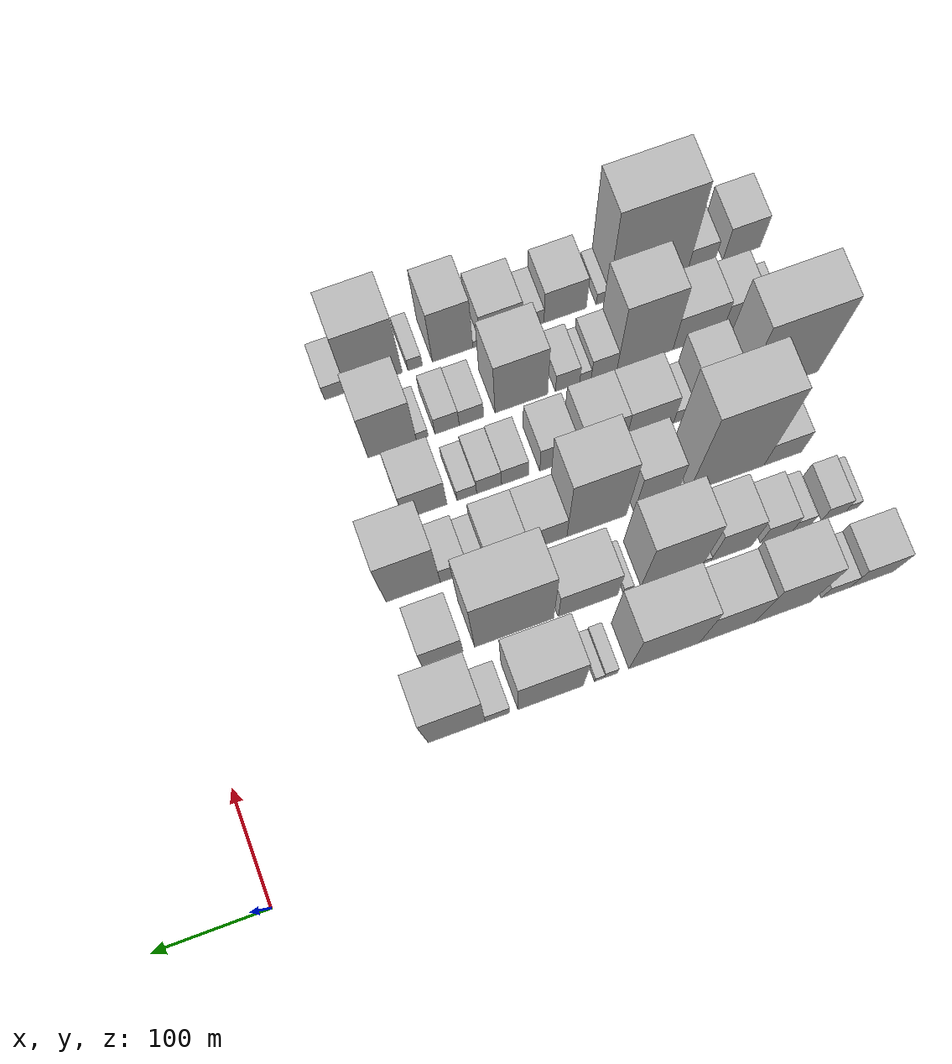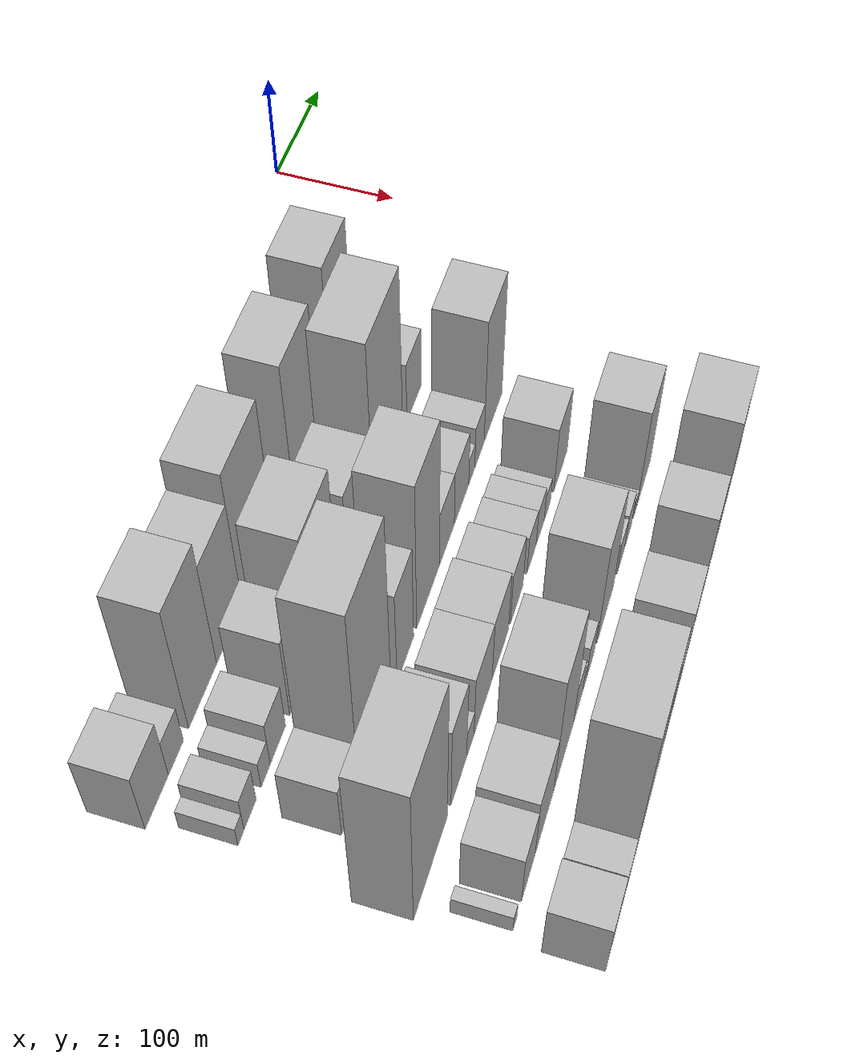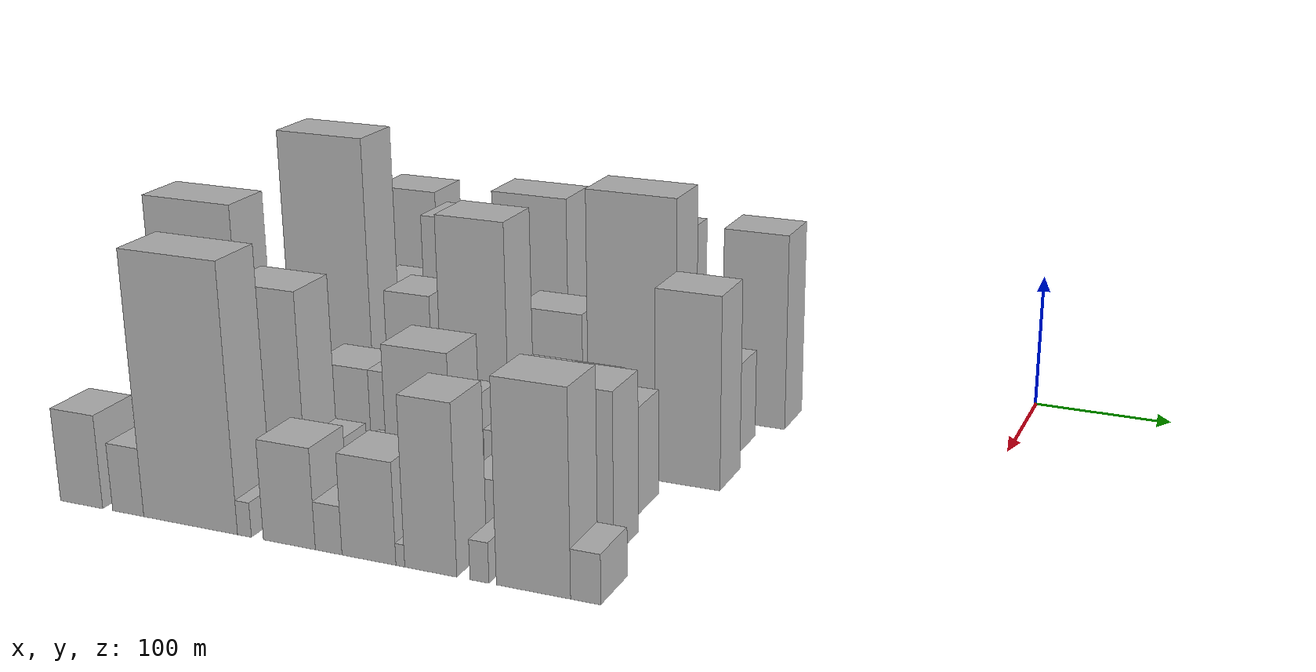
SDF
<sdf version="1.6">
 <world name="default">
  <model name="building_14">
   <static>1</static>
   <pose>100.0000 -546.5799 0 0.000000 0.000000 0.000000</pose>
   <link name="link">
    <pose>0 0 36.00 0 0 0</pose>
    <collision name="collision"><geometry><box><size>40.0000 38.7281 72.0000</size></box></geometry></collision>
    <visual name="visual">
     <cast_shadows>0</cast_shadows>
     <geometry><box><size>40.0000 38.7281 72.0000</size></box></geometry>
     <material>
      <script>
       <uri>model://HANNAS_wall/materials/scripts</uri>
       <uri>model://HANNAS_wall/materials/textures</uri>
       <name>vrc/HANNAS_wall</name>
      </script>
     </material>
    </visual>
   </link>
  </model>
  <model name="building_15">
   <static>1</static>
   <pose>100.0000 -514.3881 0 0.000000 0.000000 0.000000</pose>
   <link name="link">
    <pose>0 0 22.50 0 0 0</pose>
    <collision name="collision"><geometry><box><size>40.0000 25.6554 45.0000</size></box></geometry></collision>
    <visual name="visual">
     <cast_shadows>0</cast_shadows>
     <geometry><box><size>40.0000 25.6554 45.0000</size></box></geometry>
     <material>
      <script>
       <uri>model://HANNAS_wall/materials/scripts</uri>
       <uri>model://HANNAS_wall/materials/textures</uri>
       <name>vrc/HANNAS_wall</name>
      </script>
     </material>
    </visual>
   </link>
  </model>
  <model name="building_16">
   <static>1</static>
   <pose>100.0000 -467.4501 0 0.000000 0.000000 0.000000</pose>
   <link name="link">
    <pose>0 0 75.00 0 0 0</pose>
    <collision name="collision"><geometry><box><size>40.0000 50.2205 150.0000</size></box></geometry></collision>
    <visual name="visual">
     <cast_shadows>0</cast_shadows>
     <geometry><box><size>40.0000 50.2205 150.0000</size></box></geometry>
     <material>
      <script>
       <uri>model://HANNAS_wall/materials/scripts</uri>
       <uri>model://HANNAS_wall/materials/textures</uri>
       <name>vrc/HANNAS_wall</name>
      </script>
     </material>
    </visual>
   </link>
  </model>
  <model name="building_17">
   <static>1</static>
   <pose>100.0000 -418.1977 0 0.000000 0.000000 0.000000</pose>
   <link name="link">
    <pose>0 0 61.50 0 0 0</pose>
    <collision name="collision"><geometry><box><size>40.0000 48.2844 123.0000</size></box></geometry></collision>
    <visual name="visual">
     <cast_shadows>0</cast_shadows>
     <geometry><box><size>40.0000 48.2844 123.0000</size></box></geometry>
     <material>
      <script>
       <uri>model://HANNAS_wall/materials/scripts</uri>
       <uri>model://HANNAS_wall/materials/textures</uri>
       <name>vrc/HANNAS_wall</name>
      </script>
     </material>
    </visual>
   </link>
  </model>
  <model name="building_18">
   <static>1</static>
   <pose>100.0000 -363.4000 0 0.000000 0.000000 0.000000</pose>
   <link name="link">
    <pose>0 0 78.00 0 0 0</pose>
    <collision name="collision"><geometry><box><size>40.0000 61.3111 156.0000</size></box></geometry></collision>
    <visual name="visual">
     <cast_shadows>0</cast_shadows>
     <geometry><box><size>40.0000 61.3111 156.0000</size></box></geometry>
     <material>
      <script>
       <uri>model://HANNAS_wall/materials/scripts</uri>
       <uri>model://HANNAS_wall/materials/textures</uri>
       <name>vrc/HANNAS_wall</name>
      </script>
     </material>
    </visual>
   </link>
  </model>
  <model name="building_19">
   <static>1</static>
   <pose>100.0000 -317.0317 0 0.000000 0.000000 0.000000</pose>
   <link name="link">
    <pose>0 0 13.50 0 0 0</pose>
    <collision name="collision"><geometry><box><size>40.0000 11.4255 27.0000</size></box></geometry></collision>
    <visual name="visual">
     <cast_shadows>0</cast_shadows>
     <geometry><box><size>40.0000 11.4255 27.0000</size></box></geometry>
     <material>
      <script>
       <uri>model://HANNAS_wall/materials/scripts</uri>
       <uri>model://HANNAS_wall/materials/textures</uri>
       <name>vrc/HANNAS_wall</name>
      </script>
     </material>
    </visual>
   </link>
  </model>
  <model name="building_20">
   <static>1</static>
   <pose>100.0000 -307.1301 0 0.000000 0.000000 0.000000</pose>
   <link name="link">
    <pose>0 0 9.00 0 0 0</pose>
    <collision name="collision"><geometry><box><size>40.0000 8.3779 18.0000</size></box></geometry></collision>
    <visual name="visual">
     <cast_shadows>0</cast_shadows>
     <geometry><box><size>40.0000 8.3779 18.0000</size></box></geometry>
     <material>
      <script>
       <uri>model://HANNAS_wall/materials/scripts</uri>
       <uri>model://HANNAS_wall/materials/textures</uri>
       <name>vrc/HANNAS_wall</name>
      </script>
     </material>
    </visual>
   </link>
  </model>
  <model name="building_21">
   <static>1</static>
   <pose>100.0000 -264.8392 0 0.000000 0.000000 0.000000</pose>
   <link name="link">
    <pose>0 0 70.50 0 0 0</pose>
    <collision name="collision"><geometry><box><size>40.0000 56.2038 141.0000</size></box></geometry></collision>
    <visual name="visual">
     <cast_shadows>0</cast_shadows>
     <geometry><box><size>40.0000 56.2038 141.0000</size></box></geometry>
     <material>
      <script>
       <uri>model://HANNAS_wall/materials/scripts</uri>
       <uri>model://HANNAS_wall/materials/textures</uri>
       <name>vrc/HANNAS_wall</name>
      </script>
     </material>
    </visual>
   </link>
  </model>
  <model name="building_22">
   <static>1</static>
   <pose>100.0000 -219.1649 0 0.000000 0.000000 0.000000</pose>
   <link name="link">
    <pose>0 0 19.50 0 0 0</pose>
    <collision name="collision"><geometry><box><size>40.0000 21.1448 39.0000</size></box></geometry></collision>
    <visual name="visual">
     <cast_shadows>0</cast_shadows>
     <geometry><box><size>40.0000 21.1448 39.0000</size></box></geometry>
     <material>
      <script>
       <uri>model://HANNAS_wall/materials/scripts</uri>
       <uri>model://HANNAS_wall/materials/textures</uri>
       <name>vrc/HANNAS_wall</name>
      </script>
     </material>
    </visual>
   </link>
  </model>
  <model name="building_23">
   <static>1</static>
   <pose>100.0000 -184.2398 0 0.000000 0.000000 0.000000</pose>
   <link name="link">
    <pose>0 0 73.50 0 0 0</pose>
    <collision name="collision"><geometry><box><size>40.0000 48.7054 147.0000</size></box></geometry></collision>
    <visual name="visual">
     <cast_shadows>0</cast_shadows>
     <geometry><box><size>40.0000 48.7054 147.0000</size></box></geometry>
     <material>
      <script>
       <uri>model://HANNAS_wall/materials/scripts</uri>
       <uri>model://HANNAS_wall/materials/textures</uri>
       <name>vrc/HANNAS_wall</name>
      </script>
     </material>
    </visual>
   </link>
  </model>
  <model name="building_67">
   <static>1</static>
   <pose>160.0000 -553.2306 0 0.000000 0.000000 0.000000</pose>
   <link name="link">
    <pose>0 0 12.00 0 0 0</pose>
    <collision name="collision"><geometry><box><size>40.0000 10.8909 24.0000</size></box></geometry></collision>
    <visual name="visual">
     <cast_shadows>0</cast_shadows>
     <geometry><box><size>40.0000 10.8909 24.0000</size></box></geometry>
     <material>
      <script>
       <uri>model://HANNAS_wall/materials/scripts</uri>
       <uri>model://HANNAS_wall/materials/textures</uri>
       <name>vrc/HANNAS_wall</name>
      </script>
     </material>
    </visual>
   </link>
  </model>
  <model name="building_68">
   <static>1</static>
   <pose>160.0000 -537.0255 0 0.000000 0.000000 0.000000</pose>
   <link name="link">
    <pose>0 0 21.00 0 0 0</pose>
    <collision name="collision"><geometry><box><size>40.0000 21.5193 42.0000</size></box></geometry></collision>
    <visual name="visual">
     <cast_shadows>0</cast_shadows>
     <geometry><box><size>40.0000 21.5193 42.0000</size></box></geometry>
     <material>
      <script>
       <uri>model://HANNAS_wall/materials/scripts</uri>
       <uri>model://HANNAS_wall/materials/textures</uri>
       <name>vrc/HANNAS_wall</name>
      </script>
     </material>
    </visual>
   </link>
  </model>
  <model name="building_69">
   <static>1</static>
   <pose>160.0000 -508.9001 0 0.000000 0.000000 0.000000</pose>
   <link name="link">
    <pose>0 0 16.50 0 0 0</pose>
    <collision name="collision"><geometry><box><size>40.0000 16.7316 33.0000</size></box></geometry></collision>
    <visual name="visual">
     <cast_shadows>0</cast_shadows>
     <geometry><box><size>40.0000 16.7316 33.0000</size></box></geometry>
     <material>
      <script>
       <uri>model://HANNAS_wall/materials/scripts</uri>
       <uri>model://HANNAS_wall/materials/textures</uri>
       <name>vrc/HANNAS_wall</name>
      </script>
     </material>
    </visual>
   </link>
  </model>
  <model name="building_70">
   <static>1</static>
   <pose>160.0000 -486.1937 0 0.000000 0.000000 0.000000</pose>
   <link name="link">
    <pose>0 0 27.00 0 0 0</pose>
    <collision name="collision"><geometry><box><size>40.0000 28.6812 54.0000</size></box></geometry></collision>
    <visual name="visual">
     <cast_shadows>0</cast_shadows>
     <geometry><box><size>40.0000 28.6812 54.0000</size></box></geometry>
     <material>
      <script>
       <uri>model://HANNAS_wall/materials/scripts</uri>
       <uri>model://HANNAS_wall/materials/textures</uri>
       <name>vrc/HANNAS_wall</name>
      </script>
     </material>
    </visual>
   </link>
  </model>
  <model name="building_71">
   <static>1</static>
   <pose>160.0000 -445.7979 0 0.000000 0.000000 0.000000</pose>
   <link name="link">
    <pose>0 0 48.00 0 0 0</pose>
    <collision name="collision"><geometry><box><size>40.0000 36.1104 96.0000</size></box></geometry></collision>
    <visual name="visual">
     <cast_shadows>0</cast_shadows>
     <geometry><box><size>40.0000 36.1104 96.0000</size></box></geometry>
     <material>
      <script>
       <uri>model://HANNAS_wall/materials/scripts</uri>
       <uri>model://HANNAS_wall/materials/textures</uri>
       <name>vrc/HANNAS_wall</name>
      </script>
     </material>
    </visual>
   </link>
  </model>
  <model name="building_72">
   <static>1</static>
   <pose>160.0000 -424.4760 0 0.000000 0.000000 0.000000</pose>
   <link name="link">
    <pose>0 0 7.50 0 0 0</pose>
    <collision name="collision"><geometry><box><size>40.0000 6.5333 15.0000</size></box></geometry></collision>
    <visual name="visual">
     <cast_shadows>0</cast_shadows>
     <geometry><box><size>40.0000 6.5333 15.0000</size></box></geometry>
     <material>
      <script>
       <uri>model://HANNAS_wall/materials/scripts</uri>
       <uri>model://HANNAS_wall/materials/textures</uri>
       <name>vrc/HANNAS_wall</name>
      </script>
     </material>
    </visual>
   </link>
  </model>
  <model name="building_73">
   <static>1</static>
   <pose>160.0000 -393.7702 0 0.000000 0.000000 0.000000</pose>
   <link name="link">
    <pose>0 0 75.00 0 0 0</pose>
    <collision name="collision"><geometry><box><size>40.0000 54.8784 150.0000</size></box></geometry></collision>
    <visual name="visual">
     <cast_shadows>0</cast_shadows>
     <geometry><box><size>40.0000 54.8784 150.0000</size></box></geometry>
     <material>
      <script>
       <uri>model://HANNAS_wall/materials/scripts</uri>
       <uri>model://HANNAS_wall/materials/textures</uri>
       <name>vrc/HANNAS_wall</name>
      </script>
     </material>
    </visual>
   </link>
  </model>
  <model name="building_74">
   <static>1</static>
   <pose>160.0000 -355.0325 0 0.000000 0.000000 0.000000</pose>
   <link name="link">
    <pose>0 0 9.00 0 0 0</pose>
    <collision name="collision"><geometry><box><size>40.0000 8.5969 18.0000</size></box></geometry></collision>
    <visual name="visual">
     <cast_shadows>0</cast_shadows>
     <geometry><box><size>40.0000 8.5969 18.0000</size></box></geometry>
     <material>
      <script>
       <uri>model://HANNAS_wall/materials/scripts</uri>
       <uri>model://HANNAS_wall/materials/textures</uri>
       <name>vrc/HANNAS_wall</name>
      </script>
     </material>
    </visual>
   </link>
  </model>
  <model name="building_75">
   <static>1</static>
   <pose>160.0000 -319.7827 0 0.000000 0.000000 0.000000</pose>
   <link name="link">
    <pose>0 0 45.00 0 0 0</pose>
    <collision name="collision"><geometry><box><size>40.0000 51.9028 90.0000</size></box></geometry></collision>
    <visual name="visual">
     <cast_shadows>0</cast_shadows>
     <geometry><box><size>40.0000 51.9028 90.0000</size></box></geometry>
     <material>
      <script>
       <uri>model://HANNAS_wall/materials/scripts</uri>
       <uri>model://HANNAS_wall/materials/textures</uri>
       <name>vrc/HANNAS_wall</name>
      </script>
     </material>
    </visual>
   </link>
  </model>
  <model name="building_76">
   <static>1</static>
   <pose>160.0000 -255.5633 0 0.000000 0.000000 0.000000</pose>
   <link name="link">
    <pose>0 0 91.50 0 0 0</pose>
    <collision name="collision"><geometry><box><size>40.0000 68.5361 183.0000</size></box></geometry></collision>
    <visual name="visual">
     <cast_shadows>0</cast_shadows>
     <geometry><box><size>40.0000 68.5361 183.0000</size></box></geometry>
     <material>
      <script>
       <uri>model://HANNAS_wall/materials/scripts</uri>
       <uri>model://HANNAS_wall/materials/textures</uri>
       <name>vrc/HANNAS_wall</name>
      </script>
     </material>
    </visual>
   </link>
  </model>
  <model name="building_77">
   <static>1</static>
   <pose>160.0000 -193.5473 0 0.000000 0.000000 0.000000</pose>
   <link name="link">
    <pose>0 0 33.00 0 0 0</pose>
    <collision name="collision"><geometry><box><size>40.0000 35.4958 66.0000</size></box></geometry></collision>
    <visual name="visual">
     <cast_shadows>0</cast_shadows>
     <geometry><box><size>40.0000 35.4958 66.0000</size></box></geometry>
     <material>
      <script>
       <uri>model://HANNAS_wall/materials/scripts</uri>
       <uri>model://HANNAS_wall/materials/textures</uri>
       <name>vrc/HANNAS_wall</name>
      </script>
     </material>
    </visual>
   </link>
  </model>
  <model name="building_123">
   <static>1</static>
   <pose>220.0000 -515.9700 0 0.000000 0.000000 0.000000</pose>
   <link name="link">
    <pose>0 0 31.50 0 0 0</pose>
    <collision name="collision"><geometry><box><size>40.0000 33.7836 63.0000</size></box></geometry></collision>
    <visual name="visual">
     <cast_shadows>0</cast_shadows>
     <geometry><box><size>40.0000 33.7836 63.0000</size></box></geometry>
     <material>
      <script>
       <uri>model://HANNAS_wall/materials/scripts</uri>
       <uri>model://HANNAS_wall/materials/textures</uri>
       <name>vrc/HANNAS_wall</name>
      </script>
     </material>
    </visual>
   </link>
  </model>
  <model name="building_124">
   <static>1</static>
   <pose>220.0000 -465.3311 0 0.000000 0.000000 0.000000</pose>
   <link name="link">
    <pose>0 0 109.50 0 0 0</pose>
    <collision name="collision"><geometry><box><size>40.0000 67.4941 219.0000</size></box></geometry></collision>
    <visual name="visual">
     <cast_shadows>0</cast_shadows>
     <geometry><box><size>40.0000 67.4941 219.0000</size></box></geometry>
     <material>
      <script>
       <uri>model://HANNAS_wall/materials/scripts</uri>
       <uri>model://HANNAS_wall/materials/textures</uri>
       <name>vrc/HANNAS_wall</name>
      </script>
     </material>
    </visual>
   </link>
  </model>
  <model name="building_125">
   <static>1</static>
   <pose>220.0000 -423.5385 0 0.000000 0.000000 0.000000</pose>
   <link name="link">
    <pose>0 0 9.00 0 0 0</pose>
    <collision name="collision"><geometry><box><size>40.0000 8.0913 18.0000</size></box></geometry></collision>
    <visual name="visual">
     <cast_shadows>0</cast_shadows>
     <geometry><box><size>40.0000 8.0913 18.0000</size></box></geometry>
     <material>
      <script>
       <uri>model://HANNAS_wall/materials/scripts</uri>
       <uri>model://HANNAS_wall/materials/textures</uri>
       <name>vrc/HANNAS_wall</name>
      </script>
     </material>
    </visual>
   </link>
  </model>
  <model name="building_126">
   <static>1</static>
   <pose>220.0000 -401.4052 0 0.000000 0.000000 0.000000</pose>
   <link name="link">
    <pose>0 0 55.50 0 0 0</pose>
    <collision name="collision"><geometry><box><size>40.0000 36.1752 111.0000</size></box></geometry></collision>
    <visual name="visual">
     <cast_shadows>0</cast_shadows>
     <geometry><box><size>40.0000 36.1752 111.0000</size></box></geometry>
     <material>
      <script>
       <uri>model://HANNAS_wall/materials/scripts</uri>
       <uri>model://HANNAS_wall/materials/textures</uri>
       <name>vrc/HANNAS_wall</name>
      </script>
     </material>
    </visual>
   </link>
  </model>
  <model name="building_127">
   <static>1</static>
   <pose>220.0000 -350.0558 0 0.000000 0.000000 0.000000</pose>
   <link name="link">
    <pose>0 0 85.50 0 0 0</pose>
    <collision name="collision"><geometry><box><size>40.0000 52.5236 171.0000</size></box></geometry></collision>
    <visual name="visual">
     <cast_shadows>0</cast_shadows>
     <geometry><box><size>40.0000 52.5236 171.0000</size></box></geometry>
     <material>
      <script>
       <uri>model://HANNAS_wall/materials/scripts</uri>
       <uri>model://HANNAS_wall/materials/textures</uri>
       <name>vrc/HANNAS_wall</name>
      </script>
     </material>
    </visual>
   </link>
  </model>
  <model name="building_128">
   <static>1</static>
   <pose>220.0000 -306.0187 0 0.000000 0.000000 0.000000</pose>
   <link name="link">
    <pose>0 0 31.50 0 0 0</pose>
    <collision name="collision"><geometry><box><size>40.0000 35.5505 63.0000</size></box></geometry></collision>
    <visual name="visual">
     <cast_shadows>0</cast_shadows>
     <geometry><box><size>40.0000 35.5505 63.0000</size></box></geometry>
     <material>
      <script>
       <uri>model://HANNAS_wall/materials/scripts</uri>
       <uri>model://HANNAS_wall/materials/textures</uri>
       <name>vrc/HANNAS_wall</name>
      </script>
     </material>
    </visual>
   </link>
  </model>
  <model name="building_129">
   <static>1</static>
   <pose>220.0000 -270.4274 0 0.000000 0.000000 0.000000</pose>
   <link name="link">
    <pose>0 0 31.50 0 0 0</pose>
    <collision name="collision"><geometry><box><size>40.0000 35.6322 63.0000</size></box></geometry></collision>
    <visual name="visual">
     <cast_shadows>0</cast_shadows>
     <geometry><box><size>40.0000 35.6322 63.0000</size></box></geometry>
     <material>
      <script>
       <uri>model://HANNAS_wall/materials/scripts</uri>
       <uri>model://HANNAS_wall/materials/textures</uri>
       <name>vrc/HANNAS_wall</name>
      </script>
     </material>
    </visual>
   </link>
  </model>
  <model name="building_130">
   <static>1</static>
   <pose>220.0000 -244.9289 0 0.000000 0.000000 0.000000</pose>
   <link name="link">
    <pose>0 0 15.00 0 0 0</pose>
    <collision name="collision"><geometry><box><size>40.0000 15.3647 30.0000</size></box></geometry></collision>
    <visual name="visual">
     <cast_shadows>0</cast_shadows>
     <geometry><box><size>40.0000 15.3647 30.0000</size></box></geometry>
     <material>
      <script>
       <uri>model://HANNAS_wall/materials/scripts</uri>
       <uri>model://HANNAS_wall/materials/textures</uri>
       <name>vrc/HANNAS_wall</name>
      </script>
     </material>
    </visual>
   </link>
  </model>
  <model name="building_131">
   <static>1</static>
   <pose>220.0000 -225.1979 0 0.000000 0.000000 0.000000</pose>
   <link name="link">
    <pose>0 0 24.00 0 0 0</pose>
    <collision name="collision"><geometry><box><size>40.0000 24.0973 48.0000</size></box></geometry></collision>
    <visual name="visual">
     <cast_shadows>0</cast_shadows>
     <geometry><box><size>40.0000 24.0973 48.0000</size></box></geometry>
     <material>
      <script>
       <uri>model://HANNAS_wall/materials/scripts</uri>
       <uri>model://HANNAS_wall/materials/textures</uri>
       <name>vrc/HANNAS_wall</name>
      </script>
     </material>
    </visual>
   </link>
  </model>
  <model name="building_132">
   <static>1</static>
   <pose>220.0000 -189.5494 0 0.000000 0.000000 0.000000</pose>
   <link name="link">
    <pose>0 0 69.00 0 0 0</pose>
    <collision name="collision"><geometry><box><size>40.0000 47.1997 138.0000</size></box></geometry></collision>
    <visual name="visual">
     <cast_shadows>0</cast_shadows>
     <geometry><box><size>40.0000 47.1997 138.0000</size></box></geometry>
     <material>
      <script>
       <uri>model://HANNAS_wall/materials/scripts</uri>
       <uri>model://HANNAS_wall/materials/textures</uri>
       <name>vrc/HANNAS_wall</name>
      </script>
     </material>
    </visual>
   </link>
  </model>
  <model name="building_168">
   <static>1</static>
   <pose>280.0000 -536.5916 0 0.000000 0.000000 0.000000</pose>
   <link name="link">
    <pose>0 0 90.00 0 0 0</pose>
    <collision name="collision"><geometry><box><size>40.0000 70.9974 180.0000</size></box></geometry></collision>
    <visual name="visual">
     <cast_shadows>0</cast_shadows>
     <geometry><box><size>40.0000 70.9974 180.0000</size></box></geometry>
     <material>
      <script>
       <uri>model://HANNAS_wall/materials/scripts</uri>
       <uri>model://HANNAS_wall/materials/textures</uri>
       <name>vrc/HANNAS_wall</name>
      </script>
     </material>
    </visual>
   </link>
  </model>
  <model name="building_169">
   <static>1</static>
   <pose>280.0000 -475.7373 0 0.000000 0.000000 0.000000</pose>
   <link name="link">
    <pose>0 0 51.00 0 0 0</pose>
    <collision name="collision"><geometry><box><size>40.0000 34.7112 102.0000</size></box></geometry></collision>
    <visual name="visual">
     <cast_shadows>0</cast_shadows>
     <geometry><box><size>40.0000 34.7112 102.0000</size></box></geometry>
     <material>
      <script>
       <uri>model://HANNAS_wall/materials/scripts</uri>
       <uri>model://HANNAS_wall/materials/textures</uri>
       <name>vrc/HANNAS_wall</name>
      </script>
     </material>
    </visual>
   </link>
  </model>
  <model name="building_170">
   <static>1</static>
   <pose>280.0000 -449.9408 0 0.000000 0.000000 0.000000</pose>
   <link name="link">
    <pose>0 0 16.50 0 0 0</pose>
    <collision name="collision"><geometry><box><size>40.0000 16.8819 33.0000</size></box></geometry></collision>
    <visual name="visual">
     <cast_shadows>0</cast_shadows>
     <geometry><box><size>40.0000 16.8819 33.0000</size></box></geometry>
     <material>
      <script>
       <uri>model://HANNAS_wall/materials/scripts</uri>
       <uri>model://HANNAS_wall/materials/textures</uri>
       <name>vrc/HANNAS_wall</name>
      </script>
     </material>
    </visual>
   </link>
  </model>
  <model name="building_171">
   <static>1</static>
   <pose>280.0000 -420.3963 0 0.000000 0.000000 0.000000</pose>
   <link name="link">
    <pose>0 0 37.50 0 0 0</pose>
    <collision name="collision"><geometry><box><size>40.0000 42.2070 75.0000</size></box></geometry></collision>
    <visual name="visual">
     <cast_shadows>0</cast_shadows>
     <geometry><box><size>40.0000 42.2070 75.0000</size></box></geometry>
     <material>
      <script>
       <uri>model://HANNAS_wall/materials/scripts</uri>
       <uri>model://HANNAS_wall/materials/textures</uri>
       <name>vrc/HANNAS_wall</name>
      </script>
     </material>
    </visual>
   </link>
  </model>
  <model name="building_172">
   <static>1</static>
   <pose>280.0000 -379.3812 0 0.000000 0.000000 0.000000</pose>
   <link name="link">
    <pose>0 0 37.50 0 0 0</pose>
    <collision name="collision"><geometry><box><size>40.0000 39.8232 75.0000</size></box></geometry></collision>
    <visual name="visual">
     <cast_shadows>0</cast_shadows>
     <geometry><box><size>40.0000 39.8232 75.0000</size></box></geometry>
     <material>
      <script>
       <uri>model://HANNAS_wall/materials/scripts</uri>
       <uri>model://HANNAS_wall/materials/textures</uri>
       <name>vrc/HANNAS_wall</name>
      </script>
     </material>
    </visual>
   </link>
  </model>
  <model name="building_173">
   <static>1</static>
   <pose>280.0000 -338.4005 0 0.000000 0.000000 0.000000</pose>
   <link name="link">
    <pose>0 0 31.50 0 0 0</pose>
    <collision name="collision"><geometry><box><size>40.0000 32.1382 63.0000</size></box></geometry></collision>
    <visual name="visual">
     <cast_shadows>0</cast_shadows>
     <geometry><box><size>40.0000 32.1382 63.0000</size></box></geometry>
     <material>
      <script>
       <uri>model://HANNAS_wall/materials/scripts</uri>
       <uri>model://HANNAS_wall/materials/textures</uri>
       <name>vrc/HANNAS_wall</name>
      </script>
     </material>
    </visual>
   </link>
  </model>
  <model name="building_174">
   <static>1</static>
   <pose>280.0000 -300.4147 0 0.000000 0.000000 0.000000</pose>
   <link name="link">
    <pose>0 0 22.50 0 0 0</pose>
    <collision name="collision"><geometry><box><size>40.0000 23.8334 45.0000</size></box></geometry></collision>
    <visual name="visual">
     <cast_shadows>0</cast_shadows>
     <geometry><box><size>40.0000 23.8334 45.0000</size></box></geometry>
     <material>
      <script>
       <uri>model://HANNAS_wall/materials/scripts</uri>
       <uri>model://HANNAS_wall/materials/textures</uri>
       <name>vrc/HANNAS_wall</name>
      </script>
     </material>
    </visual>
   </link>
  </model>
  <model name="building_175">
   <static>1</static>
   <pose>280.0000 -277.5213 0 0.000000 0.000000 0.000000</pose>
   <link name="link">
    <pose>0 0 21.00 0 0 0</pose>
    <collision name="collision"><geometry><box><size>40.0000 21.9534 42.0000</size></box></geometry></collision>
    <visual name="visual">
     <cast_shadows>0</cast_shadows>
     <geometry><box><size>40.0000 21.9534 42.0000</size></box></geometry>
     <material>
      <script>
       <uri>model://HANNAS_wall/materials/scripts</uri>
       <uri>model://HANNAS_wall/materials/textures</uri>
       <name>vrc/HANNAS_wall</name>
      </script>
     </material>
    </visual>
   </link>
  </model>
  <model name="building_176">
   <static>1</static>
   <pose>280.0000 -257.9383 0 0.000000 0.000000 0.000000</pose>
   <link name="link">
    <pose>0 0 15.00 0 0 0</pose>
    <collision name="collision"><geometry><box><size>40.0000 17.2127 30.0000</size></box></geometry></collision>
    <visual name="visual">
     <cast_shadows>0</cast_shadows>
     <geometry><box><size>40.0000 17.2127 30.0000</size></box></geometry>
     <material>
      <script>
       <uri>model://HANNAS_wall/materials/scripts</uri>
       <uri>model://HANNAS_wall/materials/textures</uri>
       <name>vrc/HANNAS_wall</name>
      </script>
     </material>
    </visual>
   </link>
  </model>
  <model name="building_177">
   <static>1</static>
   <pose>280.0000 -221.3269 0 0.000000 0.000000 0.000000</pose>
   <link name="link">
    <pose>0 0 37.50 0 0 0</pose>
    <collision name="collision"><geometry><box><size>40.0000 38.0101 75.0000</size></box></geometry></collision>
    <visual name="visual">
     <cast_shadows>0</cast_shadows>
     <geometry><box><size>40.0000 38.0101 75.0000</size></box></geometry>
     <material>
      <script>
       <uri>model://HANNAS_wall/materials/scripts</uri>
       <uri>model://HANNAS_wall/materials/textures</uri>
       <name>vrc/HANNAS_wall</name>
      </script>
     </material>
    </visual>
   </link>
  </model>
  <model name="building_225">
   <static>1</static>
   <pose>340.0000 -555.6784 0 0.000000 0.000000 0.000000</pose>
   <link name="link">
    <pose>0 0 10.50 0 0 0</pose>
    <collision name="collision"><geometry><box><size>40.0000 9.2511 21.0000</size></box></geometry></collision>
    <visual name="visual">
     <cast_shadows>0</cast_shadows>
     <geometry><box><size>40.0000 9.2511 21.0000</size></box></geometry>
     <material>
      <script>
       <uri>model://HANNAS_wall/materials/scripts</uri>
       <uri>model://HANNAS_wall/materials/textures</uri>
       <name>vrc/HANNAS_wall</name>
      </script>
     </material>
    </visual>
   </link>
  </model>
  <model name="building_226">
   <static>1</static>
   <pose>340.0000 -525.1306 0 0.000000 0.000000 0.000000</pose>
   <link name="link">
    <pose>0 0 31.50 0 0 0</pose>
    <collision name="collision"><geometry><box><size>40.0000 31.8446 63.0000</size></box></geometry></collision>
    <visual name="visual">
     <cast_shadows>0</cast_shadows>
     <geometry><box><size>40.0000 31.8446 63.0000</size></box></geometry>
     <material>
      <script>
       <uri>model://HANNAS_wall/materials/scripts</uri>
       <uri>model://HANNAS_wall/materials/textures</uri>
       <name>vrc/HANNAS_wall</name>
      </script>
     </material>
    </visual>
   </link>
  </model>
  <model name="building_227">
   <static>1</static>
   <pose>340.0000 -486.8266 0 0.000000 0.000000 0.000000</pose>
   <link name="link">
    <pose>0 0 37.50 0 0 0</pose>
    <collision name="collision"><geometry><box><size>40.0000 44.7633 75.0000</size></box></geometry></collision>
    <visual name="visual">
     <cast_shadows>0</cast_shadows>
     <geometry><box><size>40.0000 44.7633 75.0000</size></box></geometry>
     <material>
      <script>
       <uri>model://HANNAS_wall/materials/scripts</uri>
       <uri>model://HANNAS_wall/materials/textures</uri>
       <name>vrc/HANNAS_wall</name>
      </script>
     </material>
    </visual>
   </link>
  </model>
  <model name="building_228">
   <static>1</static>
   <pose>340.0000 -439.1786 0 0.000000 0.000000 0.000000</pose>
   <link name="link">
    <pose>0 0 73.50 0 0 0</pose>
    <collision name="collision"><geometry><box><size>40.0000 50.5328 147.0000</size></box></geometry></collision>
    <visual name="visual">
     <cast_shadows>0</cast_shadows>
     <geometry><box><size>40.0000 50.5328 147.0000</size></box></geometry>
     <material>
      <script>
       <uri>model://HANNAS_wall/materials/scripts</uri>
       <uri>model://HANNAS_wall/materials/textures</uri>
       <name>vrc/HANNAS_wall</name>
      </script>
     </material>
    </visual>
   </link>
  </model>
  <model name="building_229">
   <static>1</static>
   <pose>340.0000 -402.2508 0 0.000000 0.000000 0.000000</pose>
   <link name="link">
    <pose>0 0 22.50 0 0 0</pose>
    <collision name="collision"><geometry><box><size>40.0000 23.3228 45.0000</size></box></geometry></collision>
    <visual name="visual">
     <cast_shadows>0</cast_shadows>
     <geometry><box><size>40.0000 23.3228 45.0000</size></box></geometry>
     <material>
      <script>
       <uri>model://HANNAS_wall/materials/scripts</uri>
       <uri>model://HANNAS_wall/materials/textures</uri>
       <name>vrc/HANNAS_wall</name>
      </script>
     </material>
    </visual>
   </link>
  </model>
  <model name="building_230">
   <static>1</static>
   <pose>340.0000 -385.4309 0 0.000000 0.000000 0.000000</pose>
   <link name="link">
    <pose>0 0 12.00 0 0 0</pose>
    <collision name="collision"><geometry><box><size>40.0000 10.3169 24.0000</size></box></geometry></collision>
    <visual name="visual">
     <cast_shadows>0</cast_shadows>
     <geometry><box><size>40.0000 10.3169 24.0000</size></box></geometry>
     <material>
      <script>
       <uri>model://HANNAS_wall/materials/scripts</uri>
       <uri>model://HANNAS_wall/materials/textures</uri>
       <name>vrc/HANNAS_wall</name>
      </script>
     </material>
    </visual>
   </link>
  </model>
  <model name="building_231">
   <static>1</static>
   <pose>340.0000 -369.4244 0 0.000000 0.000000 0.000000</pose>
   <link name="link">
    <pose>0 0 21.00 0 0 0</pose>
    <collision name="collision"><geometry><box><size>40.0000 21.6960 42.0000</size></box></geometry></collision>
    <visual name="visual">
     <cast_shadows>0</cast_shadows>
     <geometry><box><size>40.0000 21.6960 42.0000</size></box></geometry>
     <material>
      <script>
       <uri>model://HANNAS_wall/materials/scripts</uri>
       <uri>model://HANNAS_wall/materials/textures</uri>
       <name>vrc/HANNAS_wall</name>
      </script>
     </material>
    </visual>
   </link>
  </model>
  <model name="building_232">
   <static>1</static>
   <pose>340.0000 -328.0842 0 0.000000 0.000000 0.000000</pose>
   <link name="link">
    <pose>0 0 60.00 0 0 0</pose>
    <collision name="collision"><geometry><box><size>40.0000 46.9844 120.0000</size></box></geometry></collision>
    <visual name="visual">
     <cast_shadows>0</cast_shadows>
     <geometry><box><size>40.0000 46.9844 120.0000</size></box></geometry>
     <material>
      <script>
       <uri>model://HANNAS_wall/materials/scripts</uri>
       <uri>model://HANNAS_wall/materials/textures</uri>
       <name>vrc/HANNAS_wall</name>
      </script>
     </material>
    </visual>
   </link>
  </model>
  <model name="building_233">
   <static>1</static>
   <pose>340.0000 -283.6527 0 0.000000 0.000000 0.000000</pose>
   <link name="link">
    <pose>0 0 19.50 0 0 0</pose>
    <collision name="collision"><geometry><box><size>40.0000 21.8787 39.0000</size></box></geometry></collision>
    <visual name="visual">
     <cast_shadows>0</cast_shadows>
     <geometry><box><size>40.0000 21.8787 39.0000</size></box></geometry>
     <material>
      <script>
       <uri>model://HANNAS_wall/materials/scripts</uri>
       <uri>model://HANNAS_wall/materials/textures</uri>
       <name>vrc/HANNAS_wall</name>
      </script>
     </material>
    </visual>
   </link>
  </model>
  <model name="building_234">
   <static>1</static>
   <pose>340.0000 -261.9815 0 0.000000 0.000000 0.000000</pose>
   <link name="link">
    <pose>0 0 21.00 0 0 0</pose>
    <collision name="collision"><geometry><box><size>40.0000 21.4637 42.0000</size></box></geometry></collision>
    <visual name="visual">
     <cast_shadows>0</cast_shadows>
     <geometry><box><size>40.0000 21.4637 42.0000</size></box></geometry>
     <material>
      <script>
       <uri>model://HANNAS_wall/materials/scripts</uri>
       <uri>model://HANNAS_wall/materials/textures</uri>
       <name>vrc/HANNAS_wall</name>
      </script>
     </material>
    </visual>
   </link>
  </model>
  <model name="building_235">
   <static>1</static>
   <pose>340.0000 -240.0506 0 0.000000 0.000000 0.000000</pose>
   <link name="link">
    <pose>0 0 10.50 0 0 0</pose>
    <collision name="collision"><geometry><box><size>40.0000 10.3981 21.0000</size></box></geometry></collision>
    <visual name="visual">
     <cast_shadows>0</cast_shadows>
     <geometry><box><size>40.0000 10.3981 21.0000</size></box></geometry>
     <material>
      <script>
       <uri>model://HANNAS_wall/materials/scripts</uri>
       <uri>model://HANNAS_wall/materials/textures</uri>
       <name>vrc/HANNAS_wall</name>
      </script>
     </material>
    </visual>
   </link>
  </model>
  <model name="building_236">
   <static>1</static>
   <pose>340.0000 -213.4699 0 0.000000 0.000000 0.000000</pose>
   <link name="link">
    <pose>0 0 55.50 0 0 0</pose>
    <collision name="collision"><geometry><box><size>40.0000 42.7634 111.0000</size></box></geometry></collision>
    <visual name="visual">
     <cast_shadows>0</cast_shadows>
     <geometry><box><size>40.0000 42.7634 111.0000</size></box></geometry>
     <material>
      <script>
       <uri>model://HANNAS_wall/materials/scripts</uri>
       <uri>model://HANNAS_wall/materials/textures</uri>
       <name>vrc/HANNAS_wall</name>
      </script>
     </material>
    </visual>
   </link>
  </model>
  <model name="building_277">
   <static>1</static>
   <pose>400.0000 -550.6359 0 0.000000 0.000000 0.000000</pose>
   <link name="link">
    <pose>0 0 33.00 0 0 0</pose>
    <collision name="collision"><geometry><box><size>40.0000 34.2108 66.0000</size></box></geometry></collision>
    <visual name="visual">
     <cast_shadows>0</cast_shadows>
     <geometry><box><size>40.0000 34.2108 66.0000</size></box></geometry>
     <material>
      <script>
       <uri>model://HANNAS_wall/materials/scripts</uri>
       <uri>model://HANNAS_wall/materials/textures</uri>
       <name>vrc/HANNAS_wall</name>
      </script>
     </material>
    </visual>
   </link>
  </model>
  <model name="building_278">
   <static>1</static>
   <pose>400.0000 -513.1735 0 0.000000 0.000000 0.000000</pose>
   <link name="link">
    <pose>0 0 24.00 0 0 0</pose>
    <collision name="collision"><geometry><box><size>40.0000 24.7141 48.0000</size></box></geometry></collision>
    <visual name="visual">
     <cast_shadows>0</cast_shadows>
     <geometry><box><size>40.0000 24.7141 48.0000</size></box></geometry>
     <material>
      <script>
       <uri>model://HANNAS_wall/materials/scripts</uri>
       <uri>model://HANNAS_wall/materials/textures</uri>
       <name>vrc/HANNAS_wall</name>
      </script>
     </material>
    </visual>
   </link>
  </model>
  <model name="building_279">
   <static>1</static>
   <pose>400.0000 -464.5866 0 0.000000 0.000000 0.000000</pose>
   <link name="link">
    <pose>0 0 91.50 0 0 0</pose>
    <collision name="collision"><geometry><box><size>40.0000 72.4596 183.0000</size></box></geometry></collision>
    <visual name="visual">
     <cast_shadows>0</cast_shadows>
     <geometry><box><size>40.0000 72.4596 183.0000</size></box></geometry>
     <material>
      <script>
       <uri>model://HANNAS_wall/materials/scripts</uri>
       <uri>model://HANNAS_wall/materials/textures</uri>
       <name>vrc/HANNAS_wall</name>
      </script>
     </material>
    </visual>
   </link>
  </model>
  <model name="building_280">
   <static>1</static>
   <pose>400.0000 -423.1230 0 0.000000 0.000000 0.000000</pose>
   <link name="link">
    <pose>0 0 12.00 0 0 0</pose>
    <collision name="collision"><geometry><box><size>40.0000 10.4676 24.0000</size></box></geometry></collision>
    <visual name="visual">
     <cast_shadows>0</cast_shadows>
     <geometry><box><size>40.0000 10.4676 24.0000</size></box></geometry>
     <material>
      <script>
       <uri>model://HANNAS_wall/materials/scripts</uri>
       <uri>model://HANNAS_wall/materials/textures</uri>
       <name>vrc/HANNAS_wall</name>
      </script>
     </material>
    </visual>
   </link>
  </model>
  <model name="building_281">
   <static>1</static>
   <pose>400.0000 -389.7011 0 0.000000 0.000000 0.000000</pose>
   <link name="link">
    <pose>0 0 34.50 0 0 0</pose>
    <collision name="collision"><geometry><box><size>40.0000 38.3762 69.0000</size></box></geometry></collision>
    <visual name="visual">
     <cast_shadows>0</cast_shadows>
     <geometry><box><size>40.0000 38.3762 69.0000</size></box></geometry>
     <material>
      <script>
       <uri>model://HANNAS_wall/materials/scripts</uri>
       <uri>model://HANNAS_wall/materials/textures</uri>
       <name>vrc/HANNAS_wall</name>
      </script>
     </material>
    </visual>
   </link>
  </model>
  <model name="building_282">
   <static>1</static>
   <pose>400.0000 -360.8421 0 0.000000 0.000000 0.000000</pose>
   <link name="link">
    <pose>0 0 16.50 0 0 0</pose>
    <collision name="collision"><geometry><box><size>40.0000 19.3418 33.0000</size></box></geometry></collision>
    <visual name="visual">
     <cast_shadows>0</cast_shadows>
     <geometry><box><size>40.0000 19.3418 33.0000</size></box></geometry>
     <material>
      <script>
       <uri>model://HANNAS_wall/materials/scripts</uri>
       <uri>model://HANNAS_wall/materials/textures</uri>
       <name>vrc/HANNAS_wall</name>
      </script>
     </material>
    </visual>
   </link>
  </model>
  <model name="building_283">
   <static>1</static>
   <pose>400.0000 -331.9272 0 0.000000 0.000000 0.000000</pose>
   <link name="link">
    <pose>0 0 34.50 0 0 0</pose>
    <collision name="collision"><geometry><box><size>40.0000 38.4880 69.0000</size></box></geometry></collision>
    <visual name="visual">
     <cast_shadows>0</cast_shadows>
     <geometry><box><size>40.0000 38.4880 69.0000</size></box></geometry>
     <material>
      <script>
       <uri>model://HANNAS_wall/materials/scripts</uri>
       <uri>model://HANNAS_wall/materials/textures</uri>
       <name>vrc/HANNAS_wall</name>
      </script>
     </material>
    </visual>
   </link>
  </model>
  <model name="building_284">
   <static>1</static>
   <pose>400.0000 -309.5976 0 0.000000 0.000000 0.000000</pose>
   <link name="link">
    <pose>0 0 7.50 0 0 0</pose>
    <collision name="collision"><geometry><box><size>40.0000 6.1713 15.0000</size></box></geometry></collision>
    <visual name="visual">
     <cast_shadows>0</cast_shadows>
     <geometry><box><size>40.0000 6.1713 15.0000</size></box></geometry>
     <material>
      <script>
       <uri>model://HANNAS_wall/materials/scripts</uri>
       <uri>model://HANNAS_wall/materials/textures</uri>
       <name>vrc/HANNAS_wall</name>
      </script>
     </material>
    </visual>
   </link>
  </model>
  <model name="building_285">
   <static>1</static>
   <pose>400.0000 -288.4215 0 0.000000 0.000000 0.000000</pose>
   <link name="link">
    <pose>0 0 57.00 0 0 0</pose>
    <collision name="collision"><geometry><box><size>40.0000 36.1809 114.0000</size></box></geometry></collision>
    <visual name="visual">
     <cast_shadows>0</cast_shadows>
     <geometry><box><size>40.0000 36.1809 114.0000</size></box></geometry>
     <material>
      <script>
       <uri>model://HANNAS_wall/materials/scripts</uri>
       <uri>model://HANNAS_wall/materials/textures</uri>
       <name>vrc/HANNAS_wall</name>
      </script>
     </material>
    </visual>
   </link>
  </model>
  <model name="building_286">
   <static>1</static>
   <pose>400.0000 -254.8800 0 0.000000 0.000000 0.000000</pose>
   <link name="link">
    <pose>0 0 13.50 0 0 0</pose>
    <collision name="collision"><geometry><box><size>40.0000 12.9021 27.0000</size></box></geometry></collision>
    <visual name="visual">
     <cast_shadows>0</cast_shadows>
     <geometry><box><size>40.0000 12.9021 27.0000</size></box></geometry>
     <material>
      <script>
       <uri>model://HANNAS_wall/materials/scripts</uri>
       <uri>model://HANNAS_wall/materials/textures</uri>
       <name>vrc/HANNAS_wall</name>
      </script>
     </material>
    </visual>
   </link>
  </model>
  <model name="building_287">
   <static>1</static>
   <pose>400.0000 -218.7611 0 0.000000 0.000000 0.000000</pose>
   <link name="link">
    <pose>0 0 67.50 0 0 0</pose>
    <collision name="collision"><geometry><box><size>40.0000 49.3358 135.0000</size></box></geometry></collision>
    <visual name="visual">
     <cast_shadows>0</cast_shadows>
     <geometry><box><size>40.0000 49.3358 135.0000</size></box></geometry>
     <material>
      <script>
       <uri>model://HANNAS_wall/materials/scripts</uri>
       <uri>model://HANNAS_wall/materials/textures</uri>
       <name>vrc/HANNAS_wall</name>
      </script>
     </material>
    </visual>
   </link>
  </model>
  <model name="building_288">
   <static>1</static>
   <pose>400.0000 -184.2697 0 0.000000 0.000000 0.000000</pose>
   <link name="link">
    <pose>0 0 16.50 0 0 0</pose>
    <collision name="collision"><geometry><box><size>40.0000 19.6469 33.0000</size></box></geometry></collision>
    <visual name="visual">
     <cast_shadows>0</cast_shadows>
     <geometry><box><size>40.0000 19.6469 33.0000</size></box></geometry>
     <material>
      <script>
       <uri>model://HANNAS_wall/materials/scripts</uri>
       <uri>model://HANNAS_wall/materials/textures</uri>
       <name>vrc/HANNAS_wall</name>
      </script>
     </material>
    </visual>
   </link>
  </model>
 </world>
</sdf>
